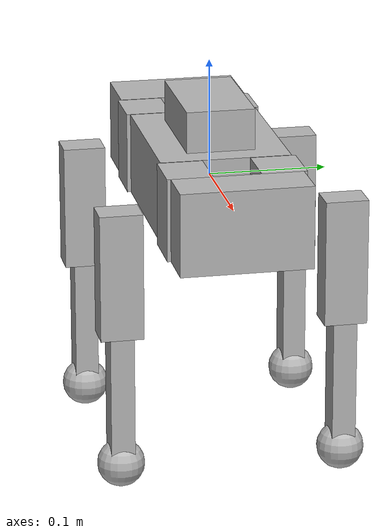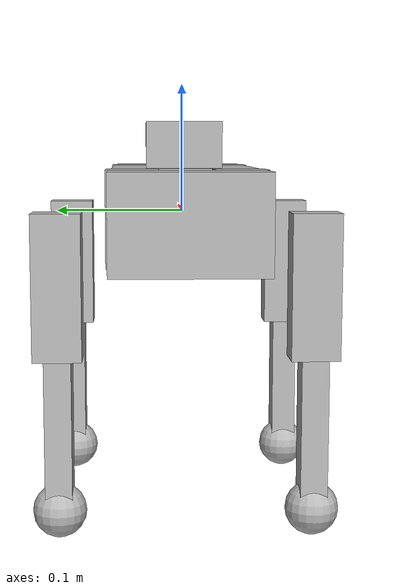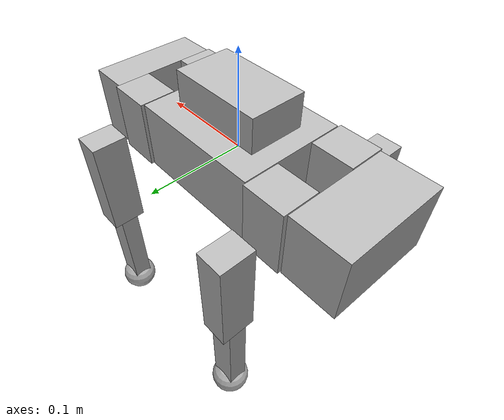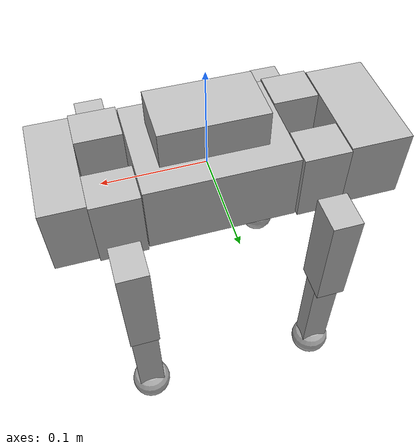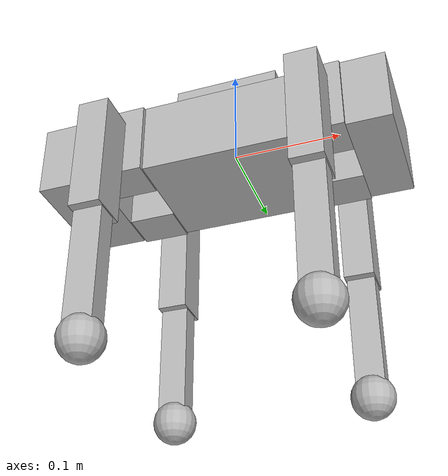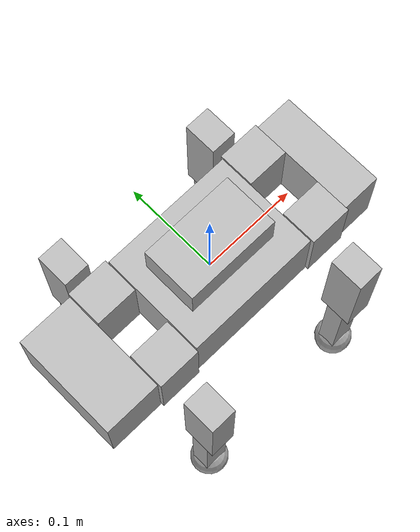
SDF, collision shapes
<sdf version='1.7'>
  <model name='spot_micro'>
    <link name='base_link'>
      <inertial>
        <pose>0 0 0.00473 0 -0 0</pose>
        <mass>3.7</mass>
        <inertia>
          <ixx>400.001</ixx>
          <ixy>0</ixy>
          <ixz>0</ixz>
          <iyy>400.001</iyy>
          <iyz>0</iyz>
          <izz>400</izz>
        </inertia>
      </inertial>
      <collision name='base_link_collision'>
        <pose>0 0 0 0 -0 0</pose>
        <geometry>
          <box>
            <size>0.14 0.11 0.07</size>
          </box>
        </geometry>
      </collision>
      <collision name='base_link_fixed_joint_lump__front_link_collision_1'>
        <pose>-0.145 0 0 0 -0 0</pose>
        <geometry>
          <box>
            <size>0.058 0.11 0.07</size>
          </box>
        </geometry>
      </collision>
      <collision name='base_link_fixed_joint_lump__lidar_link_collision_2'>
        <pose>0 0 0.035 0 -0 0</pose>
        <geometry>
          <box>
            <size>0.0985 0.0577 0.07</size>
          </box>
        </geometry>
      </collision>
      <collision name='base_link_fixed_joint_lump__rear_link_collision_3'>
        <pose>0.135 0 0 0 -0 0</pose>
        <geometry>
          <box>
            <size>0.04 0.11 0.07</size>
          </box>
        </geometry>
      </collision>
      <visual name='base_link_visual'>
        <pose>-0.042 -0.055 -0.01 0 -0 0</pose>
        <geometry>
          <mesh>
            <scale>0.001 0.001 0.001</scale>
            <uri>model://spot_micro/meshes/mainbody.stl</uri>
          </mesh>
        </geometry>
      </visual>
      <visual name='base_link_fixed_joint_lump__front_link_visual_1'>
        <pose>0.04 0.055 -0.01 0 -0 3.14159</pose>
        <geometry>
          <mesh>
            <scale>0.001 0.001 0.001</scale>
            <uri>model://spot_micro/meshes/frontpart.stl</uri>
          </mesh>
        </geometry>
      </visual>
      <visual name='base_link_fixed_joint_lump__lidar_link_visual_2'>
        <pose>-0.03425 0.03585 0.035 1.57075 -0 0</pose>
        <geometry>
          <mesh>
            <scale>0.001 0.001 0.001</scale>
            <uri>model://spot_micro/meshes/rplidar_main.STL</uri>
          </mesh>
        </geometry>
      </visual>
      <visual name='base_link_fixed_joint_lump__rear_link_visual_3'>
        <pose>0.04 0.055 -0.01 0 -0 3.14159</pose>
        <geometry>
          <mesh>
            <scale>0.001 0.001 0.001</scale>
            <uri>model://spot_micro/meshes/backpart.stl</uri>
          </mesh>
        </geometry>
      </visual>
    </link>
    <joint name='front_left_shoulder' type='revolute'>
      <pose relative_to='base_link'>0.093 0.039 0 0 -0 0</pose>
      <parent>base_link</parent>
      <child>front_left_shoulder_link</child>
      <axis>
        <xyz>1 0 0</xyz>
        <limit>
          <lower>-0.548</lower>
          <upper>0.548</upper>
          <effort>1000</effort>
          <velocity>0.7</velocity>
        </limit>
        <dynamics>
          <damping>0</damping>
          <friction>0.5</friction>
          <spring_reference>0</spring_reference>
          <spring_stiffness>0</spring_stiffness>
        </dynamics>
      </axis>
    </joint>
    <link name='front_left_shoulder_link'>
      <pose relative_to='front_left_shoulder'>0 0 0 0 -0 0</pose>
      <inertial>
        <pose>0 0 0 0 -0 0</pose>
        <mass>0.1</mass>
        <inertia>
          <ixx>100</ixx>
          <ixy>0</ixy>
          <ixz>0</ixz>
          <iyy>100</iyy>
          <iyz>0</iyz>
          <izz>100</izz>
        </inertia>
      </inertial>
      <collision name='front_left_shoulder_link_collision'>
        <pose>0 0 0 0 -0 0</pose>
        <geometry>
          <box>
            <size>0.044 0.038 0.07</size>
          </box>
        </geometry>
      </collision>
      <visual name='front_left_shoulder_link_visual'>
        <pose>0.135 0.015 -0.01 0 -0 3.14159</pose>
        <geometry>
          <mesh>
            <scale>0.001 0.001 0.001</scale>
            <uri>model://spot_micro/meshes/lshoulder.stl</uri>
          </mesh>
        </geometry>
      </visual>
    </link>
    <joint name='front_left_leg' type='revolute'>
      <pose relative_to='front_left_shoulder_link'>0 0.055 0 0 -0 0</pose>
      <parent>front_left_shoulder_link</parent>
      <child>front_left_leg_link</child>
      <axis>
        <xyz>0 1 0</xyz>
        <limit>
          <lower>-2.666</lower>
          <upper>1.548</upper>
          <effort>1000</effort>
          <velocity>0.5</velocity>
        </limit>
        <dynamics>
          <damping>0</damping>
          <friction>0</friction>
          <spring_reference>0</spring_reference>
          <spring_stiffness>0</spring_stiffness>
        </dynamics>
      </axis>
    </joint>
    <link name='front_left_leg_link'>
      <pose relative_to='front_left_leg'>0 0 0 0 -0 0</pose>
      <inertial>
        <pose>0 0 0 0 -0 0</pose>
        <mass>0.15</mass>
        <inertia>
          <ixx>1000</ixx>
          <ixy>0</ixy>
          <ixz>0</ixz>
          <iyy>1000</iyy>
          <iyz>0</iyz>
          <izz>1000</izz>
        </inertia>
      </inertial>
      <collision name='front_left_leg_link_collision'>
        <pose>0 0 -0.05 0 -0 0</pose>
        <geometry>
          <box>
            <size>0.028 0.036 0.1075</size>
          </box>
        </geometry>
      </collision>
      <visual name='front_left_leg_link_visual'>
        <pose>0.13 -0.04 -0.025 0 -0.139 3.14159</pose>
        <geometry>
          <mesh>
            <scale>0.001 0.001 0.001</scale>
            <uri>model://spot_micro/meshes/larm.stl</uri>
          </mesh>
        </geometry>
      </visual>
      <visual name='front_left_leg_link_cover_visual_1'>
        <pose>0.13 -0.04 -0.025 0 -0.139 3.14159</pose>
        <geometry>
          <mesh>
            <scale>0.001 0.001 0.001</scale>
            <uri>model://spot_micro/meshes/larm_cover.stl</uri>
          </mesh>
        </geometry>
      </visual>
    </link>
    <joint name='front_left_foot' type='revolute'>
      <pose relative_to='front_left_leg_link'>0 0 -0.1075 0 -0 0</pose>
      <parent>front_left_leg_link</parent>
      <child>front_left_foot_link</child>
      <axis>
        <xyz>0 1 0</xyz>
        <limit>
          <lower>-2.6</lower>
          <upper>0.1</upper>
          <effort>1000</effort>
          <velocity>0.5</velocity>
        </limit>
        <dynamics>
          <damping>0</damping>
          <friction>0.5</friction>
          <spring_reference>0</spring_reference>
          <spring_stiffness>0</spring_stiffness>
        </dynamics>
      </axis>
    </joint>
    <link name='front_left_foot_link'>
      <pose relative_to='front_left_foot'>0 0 0 0 -0 0</pose>
      <inertial>
        <pose>0 0 -0.043333 0 -0 0</pose>
        <mass>0.15</mass>
        <inertia>
          <ixx>2000</ixx>
          <ixy>0</ixy>
          <ixz>0</ixz>
          <iyy>2000</iyy>
          <iyz>0</iyz>
          <izz>2000</izz>
        </inertia>
      </inertial>
      <collision name='front_left_foot_link_collision'>
        <pose>0 0 -0.05 0 -0 0</pose>
        <geometry>
          <box>
            <size>0.026 0.02 0.13</size>
          </box>
        </geometry>
      </collision>
      <collision name='front_left_foot_link_fixed_joint_lump__front_left_toe_link_collision_1'>
        <pose>0 0 -0.11 0 -0 0</pose>
        <geometry>
          <sphere>
            <radius>0.02</radius>
          </sphere>
        </geometry>
      </collision>
      <visual name='front_left_foot_link_visual'>
        <pose>0.12 -0.04 0.1 0 -0 3.14159</pose>
        <geometry>
          <mesh>
            <scale>0.001 0.001 0.001</scale>
            <uri>model://spot_micro/meshes/lfoot.stl</uri>
          </mesh>
        </geometry>
      </visual>
      <visual name='front_left_foot_link_fixed_joint_lump__front_left_toe_link_visual_1'>
        <pose>0 0.01 -0.115 0 -0.4001 3.14159</pose>
        <geometry>
          <mesh>
            <scale>0.001 0.001 0.001</scale>
            <uri>model://spot_micro/meshes/foot.stl</uri>
          </mesh>
        </geometry>
      </visual>
    </link>
    <joint name='front_right_shoulder' type='revolute'>
      <pose relative_to='base_link'>0.093 -0.039 0 0 -0 0</pose>
      <parent>base_link</parent>
      <child>front_right_shoulder_link</child>
      <axis>
        <xyz>1 0 0</xyz>
        <limit>
          <lower>-0.548</lower>
          <upper>0.548</upper>
          <effort>1000</effort>
          <velocity>0.7</velocity>
        </limit>
        <dynamics>
          <damping>0</damping>
          <friction>0.5</friction>
          <spring_reference>0</spring_reference>
          <spring_stiffness>0</spring_stiffness>
        </dynamics>
      </axis>
    </joint>
    <link name='front_right_shoulder_link'>
      <pose relative_to='front_right_shoulder'>0 0 0 0 -0 0</pose>
      <inertial>
        <pose>0 0 0 0 -0 0</pose>
        <mass>0.1</mass>
        <inertia>
          <ixx>100</ixx>
          <ixy>0</ixy>
          <ixz>0</ixz>
          <iyy>100</iyy>
          <iyz>0</iyz>
          <izz>100</izz>
        </inertia>
      </inertial>
      <collision name='front_right_shoulder_link_collision'>
        <pose>0 0 0 0 -0 0</pose>
        <geometry>
          <box>
            <size>0.044 0.038 0.07</size>
          </box>
        </geometry>
      </collision>
      <visual name='front_right_shoulder_link_visual'>
        <pose>0.135 0.095 -0.01 0 -0 3.14159</pose>
        <geometry>
          <mesh>
            <scale>0.001 0.001 0.001</scale>
            <uri>model://spot_micro/meshes/rshoulder.stl</uri>
          </mesh>
        </geometry>
      </visual>
    </link>
    <joint name='front_right_leg' type='revolute'>
      <pose relative_to='front_right_shoulder_link'>0 -0.055 0 0 -0 0</pose>
      <parent>front_right_shoulder_link</parent>
      <child>front_right_leg_link</child>
      <axis>
        <xyz>0 1 0</xyz>
        <limit>
          <lower>-2.666</lower>
          <upper>1.548</upper>
          <effort>1000</effort>
          <velocity>0.5</velocity>
        </limit>
        <dynamics>
          <damping>0</damping>
          <friction>0</friction>
          <spring_reference>0</spring_reference>
          <spring_stiffness>0</spring_stiffness>
        </dynamics>
      </axis>
    </joint>
    <link name='front_right_leg_link'>
      <pose relative_to='front_right_leg'>0 0 0 0 -0 0</pose>
      <inertial>
        <pose>0 0 0 0 -0 0</pose>
        <mass>0.15</mass>
        <inertia>
          <ixx>1000</ixx>
          <ixy>0</ixy>
          <ixz>0</ixz>
          <iyy>1000</iyy>
          <iyz>0</iyz>
          <izz>1000</izz>
        </inertia>
      </inertial>
      <collision name='front_right_leg_link_collision'>
        <pose>0 0 -0.05 0 -0 0</pose>
        <geometry>
          <box>
            <size>0.028 0.036 0.1075</size>
          </box>
        </geometry>
      </collision>
      <visual name='front_right_leg_link_visual'>
        <pose>0.13 0.15 -0.025 0 -0.139 3.14159</pose>
        <geometry>
          <mesh>
            <scale>0.001 0.001 0.001</scale>
            <uri>model://spot_micro/meshes/rarm.stl</uri>
          </mesh>
        </geometry>
      </visual>
      <visual name='front_right_leg_link_cover_visual_1'>
        <pose>0.13 0.15 -0.025 0 -0.139 3.14159</pose>
        <geometry>
          <mesh>
            <scale>0.001 0.001 0.001</scale>
            <uri>model://spot_micro/meshes/rarm_cover.stl</uri>
          </mesh>
        </geometry>
      </visual>
    </link>
    <joint name='front_right_foot' type='revolute'>
      <pose relative_to='front_right_leg_link'>0 0 -0.1075 0 -0 0</pose>
      <parent>front_right_leg_link</parent>
      <child>front_right_foot_link</child>
      <axis>
        <xyz>0 1 0</xyz>
        <limit>
          <lower>-2.6</lower>
          <upper>0.1</upper>
          <effort>1000</effort>
          <velocity>0.5</velocity>
        </limit>
        <dynamics>
          <damping>0</damping>
          <friction>0.5</friction>
          <spring_reference>0</spring_reference>
          <spring_stiffness>0</spring_stiffness>
        </dynamics>
      </axis>
    </joint>
    <link name='front_right_foot_link'>
      <pose relative_to='front_right_foot'>0 0 0 0 -0 0</pose>
      <inertial>
        <pose>0 0 -0.043333 0 -0 0</pose>
        <mass>0.15</mass>
        <inertia>
          <ixx>2000</ixx>
          <ixy>0</ixy>
          <ixz>0</ixz>
          <iyy>2000</iyy>
          <iyz>0</iyz>
          <izz>2000</izz>
        </inertia>
      </inertial>
      <collision name='front_right_foot_link_collision'>
        <pose>0 0 -0.05 0 -0 0</pose>
        <geometry>
          <box>
            <size>0.026 0.02 0.13</size>
          </box>
        </geometry>
      </collision>
      <collision name='front_right_foot_link_fixed_joint_lump__front_right_toe_link_collision_1'>
        <pose>0 0 -0.11 0 -0 0</pose>
        <geometry>
          <sphere>
            <radius>0.02</radius>
          </sphere>
        </geometry>
      </collision>
      <visual name='front_right_foot_link_visual'>
        <pose>0.12 0.15 0.1 0 -0 3.14159</pose>
        <geometry>
          <mesh>
            <scale>0.001 0.001 0.001</scale>
            <uri>model://spot_micro/meshes/rfoot.stl</uri>
          </mesh>
        </geometry>
      </visual>
      <visual name='front_right_foot_link_fixed_joint_lump__front_right_toe_link_visual_1'>
        <pose>0 0.01 -0.115 0 -0.4001 3.14159</pose>
        <geometry>
          <mesh>
            <scale>0.001 0.001 0.001</scale>
            <uri>model://spot_micro/meshes/foot.stl</uri>
          </mesh>
        </geometry>
      </visual>
    </link>
    <joint name='rear_left_shoulder' type='revolute'>
      <pose relative_to='base_link'>-0.093 0.039 0 0 -0 0</pose>
      <parent>base_link</parent>
      <child>rear_left_shoulder_link</child>
      <axis>
        <xyz>1 0 0</xyz>
        <limit>
          <lower>-0.548</lower>
          <upper>0.548</upper>
          <effort>1000</effort>
          <velocity>0.7</velocity>
        </limit>
        <dynamics>
          <damping>0</damping>
          <friction>0.5</friction>
          <spring_reference>0</spring_reference>
          <spring_stiffness>0</spring_stiffness>
        </dynamics>
      </axis>
    </joint>
    <link name='rear_left_shoulder_link'>
      <pose relative_to='rear_left_shoulder'>0 0 0 0 -0 0</pose>
      <inertial>
        <pose>0 0 0 0 -0 0</pose>
        <mass>0.1</mass>
        <inertia>
          <ixx>100</ixx>
          <ixy>0</ixy>
          <ixz>0</ixz>
          <iyy>100</iyy>
          <iyz>0</iyz>
          <izz>100</izz>
        </inertia>
      </inertial>
      <collision name='rear_left_shoulder_link_collision'>
        <pose>0 0 0 0 -0 0</pose>
        <geometry>
          <box>
            <size>0.044 0.038 0.07</size>
          </box>
        </geometry>
      </collision>
      <visual name='rear_left_shoulder_link_visual'>
        <pose>0.135 0.015 -0.01 0 -0 3.14159</pose>
        <geometry>
          <mesh>
            <scale>0.001 0.001 0.001</scale>
            <uri>model://spot_micro/meshes/lshoulder.stl</uri>
          </mesh>
        </geometry>
      </visual>
    </link>
    <joint name='rear_left_leg' type='revolute'>
      <pose relative_to='rear_left_shoulder_link'>0 0.055 0 0 -0 0</pose>
      <parent>rear_left_shoulder_link</parent>
      <child>rear_left_leg_link</child>
      <axis>
        <xyz>0 1 0</xyz>
        <limit>
          <lower>-2.666</lower>
          <upper>1.548</upper>
          <effort>1000</effort>
          <velocity>0.5</velocity>
        </limit>
        <dynamics>
          <damping>0</damping>
          <friction>0</friction>
          <spring_reference>0</spring_reference>
          <spring_stiffness>0</spring_stiffness>
        </dynamics>
      </axis>
    </joint>
    <link name='rear_left_leg_link'>
      <pose relative_to='rear_left_leg'>0 0 0 0 -0 0</pose>
      <inertial>
        <pose>0 0 0 0 -0 0</pose>
        <mass>0.15</mass>
        <inertia>
          <ixx>1000</ixx>
          <ixy>0</ixy>
          <ixz>0</ixz>
          <iyy>1000</iyy>
          <iyz>0</iyz>
          <izz>1000</izz>
        </inertia>
      </inertial>
      <collision name='rear_left_leg_link_collision'>
        <pose>0 0 -0.05 0 -0 0</pose>
        <geometry>
          <box>
            <size>0.028 0.036 0.1075</size>
          </box>
        </geometry>
      </collision>
      <visual name='rear_left_leg_link_visual'>
        <pose>0.13 -0.04 -0.025 0 -0.139 3.14159</pose>
        <geometry>
          <mesh>
            <scale>0.001 0.001 0.001</scale>
            <uri>model://spot_micro/meshes/larm.stl</uri>
          </mesh>
        </geometry>
      </visual>
      <visual name='rear_left_leg_link_cover_visual_1'>
        <pose>0.13 -0.04 -0.025 0 -0.139 3.14159</pose>
        <geometry>
          <mesh>
            <scale>0.001 0.001 0.001</scale>
            <uri>model://spot_micro/meshes/larm_cover.stl</uri>
          </mesh>
        </geometry>
      </visual>
    </link>
    <joint name='rear_left_foot' type='revolute'>
      <pose relative_to='rear_left_leg_link'>0 0 -0.1075 0 -0 0</pose>
      <parent>rear_left_leg_link</parent>
      <child>rear_left_foot_link</child>
      <axis>
        <xyz>0 1 0</xyz>
        <limit>
          <lower>-2.6</lower>
          <upper>0.1</upper>
          <effort>1000</effort>
          <velocity>0.5</velocity>
        </limit>
        <dynamics>
          <damping>0</damping>
          <friction>0.5</friction>
          <spring_reference>0</spring_reference>
          <spring_stiffness>0</spring_stiffness>
        </dynamics>
      </axis>
    </joint>
    <link name='rear_left_foot_link'>
      <pose relative_to='rear_left_foot'>0 0 0 0 -0 0</pose>
      <inertial>
        <pose>0 0 -0.043333 0 -0 0</pose>
        <mass>0.15</mass>
        <inertia>
          <ixx>2000</ixx>
          <ixy>0</ixy>
          <ixz>0</ixz>
          <iyy>2000</iyy>
          <iyz>0</iyz>
          <izz>2000</izz>
        </inertia>
      </inertial>
      <collision name='rear_left_foot_link_collision'>
        <pose>0 0 -0.05 0 -0 0</pose>
        <geometry>
          <box>
            <size>0.026 0.02 0.13</size>
          </box>
        </geometry>
      </collision>
      <collision name='rear_left_foot_link_fixed_joint_lump__rear_left_toe_link_collision_1'>
        <pose>0 0 -0.11 0 -0 0</pose>
        <geometry>
          <sphere>
            <radius>0.02</radius>
          </sphere>
        </geometry>
      </collision>
      <visual name='rear_left_foot_link_visual'>
        <pose>0.12 -0.04 0.1 0 -0 3.14159</pose>
        <geometry>
          <mesh>
            <scale>0.001 0.001 0.001</scale>
            <uri>model://spot_micro/meshes/lfoot.stl</uri>
          </mesh>
        </geometry>
      </visual>
      <visual name='rear_left_foot_link_fixed_joint_lump__rear_left_toe_link_visual_1'>
        <pose>0 0.01 -0.115 0 -0.4001 3.14159</pose>
        <geometry>
          <mesh>
            <scale>0.001 0.001 0.001</scale>
            <uri>model://spot_micro/meshes/foot.stl</uri>
          </mesh>
        </geometry>
      </visual>
    </link>
    <joint name='rear_right_shoulder' type='revolute'>
      <pose relative_to='base_link'>-0.093 -0.039 0 0 -0 0</pose>
      <parent>base_link</parent>
      <child>rear_right_shoulder_link</child>
      <axis>
        <xyz>1 0 0</xyz>
        <limit>
          <lower>-0.548</lower>
          <upper>0.548</upper>
          <effort>1000</effort>
          <velocity>0.7</velocity>
        </limit>
        <dynamics>
          <damping>0</damping>
          <friction>0.5</friction>
          <spring_reference>0</spring_reference>
          <spring_stiffness>0</spring_stiffness>
        </dynamics>
      </axis>
    </joint>
    <link name='rear_right_shoulder_link'>
      <pose relative_to='rear_right_shoulder'>0 0 0 0 -0 0</pose>
      <inertial>
        <pose>0 0 0 0 -0 0</pose>
        <mass>0.1</mass>
        <inertia>
          <ixx>100</ixx>
          <ixy>0</ixy>
          <ixz>0</ixz>
          <iyy>100</iyy>
          <iyz>0</iyz>
          <izz>100</izz>
        </inertia>
      </inertial>
      <collision name='rear_right_shoulder_link_collision'>
        <pose>0 0 0 0 -0 0</pose>
        <geometry>
          <box>
            <size>0.044 0.038 0.07</size>
          </box>
        </geometry>
      </collision>
      <visual name='rear_right_shoulder_link_visual'>
        <pose>0.135 0.095 -0.01 0 -0 3.14159</pose>
        <geometry>
          <mesh>
            <scale>0.001 0.001 0.001</scale>
            <uri>model://spot_micro/meshes/rshoulder.stl</uri>
          </mesh>
        </geometry>
      </visual>
    </link>
    <joint name='rear_right_leg' type='revolute'>
      <pose relative_to='rear_right_shoulder_link'>0 -0.055 0 0 -0 0</pose>
      <parent>rear_right_shoulder_link</parent>
      <child>rear_right_leg_link</child>
      <axis>
        <xyz>0 1 0</xyz>
        <limit>
          <lower>-2.666</lower>
          <upper>1.548</upper>
          <effort>1000</effort>
          <velocity>0.5</velocity>
        </limit>
        <dynamics>
          <damping>0</damping>
          <friction>0</friction>
          <spring_reference>0</spring_reference>
          <spring_stiffness>0</spring_stiffness>
        </dynamics>
      </axis>
    </joint>
    <link name='rear_right_leg_link'>
      <pose relative_to='rear_right_leg'>0 0 0 0 -0 0</pose>
      <inertial>
        <pose>0 0 0 0 -0 0</pose>
        <mass>0.15</mass>
        <inertia>
          <ixx>1000</ixx>
          <ixy>0</ixy>
          <ixz>0</ixz>
          <iyy>1000</iyy>
          <iyz>0</iyz>
          <izz>1000</izz>
        </inertia>
      </inertial>
      <collision name='rear_right_leg_link_collision'>
        <pose>0 0 -0.05 0 -0 0</pose>
        <geometry>
          <box>
            <size>0.028 0.036 0.1075</size>
          </box>
        </geometry>
      </collision>
      <visual name='rear_right_leg_link_visual'>
        <pose>0.13 0.15 -0.025 0 -0.139 3.14159</pose>
        <geometry>
          <mesh>
            <scale>0.001 0.001 0.001</scale>
            <uri>model://spot_micro/meshes/rarm.stl</uri>
          </mesh>
        </geometry>
      </visual>
      <visual name='rear_right_leg_link_cover_visual_1'>
        <pose>0.13 0.15 -0.025 0 -0.139 3.14159</pose>
        <geometry>
          <mesh>
            <scale>0.001 0.001 0.001</scale>
            <uri>model://spot_micro/meshes/rarm_cover.stl</uri>
          </mesh>
        </geometry>
      </visual>
    </link>
    <joint name='rear_right_foot' type='revolute'>
      <pose relative_to='rear_right_leg_link'>0 0 -0.1075 0 -0 0</pose>
      <parent>rear_right_leg_link</parent>
      <child>rear_right_foot_link</child>
      <axis>
        <xyz>0 1 0</xyz>
        <limit>
          <lower>-2.6</lower>
          <upper>0.1</upper>
          <effort>1000</effort>
          <velocity>0.5</velocity>
        </limit>
        <dynamics>
          <damping>0</damping>
          <friction>0.5</friction>
          <spring_reference>0</spring_reference>
          <spring_stiffness>0</spring_stiffness>
        </dynamics>
      </axis>
    </joint>
    <link name='rear_right_foot_link'>
      <pose relative_to='rear_right_foot'>0 0 0 0 -0 0</pose>
      <inertial>
        <pose>0 0 -0.043333 0 -0 0</pose>
        <mass>0.15</mass>
        <inertia>
          <ixx>2000</ixx>
          <ixy>0</ixy>
          <ixz>0</ixz>
          <iyy>2000</iyy>
          <iyz>0</iyz>
          <izz>2000</izz>
        </inertia>
      </inertial>
      <collision name='rear_right_foot_link_collision'>
        <pose>0 0 -0.05 0 -0 0</pose>
        <geometry>
          <box>
            <size>0.026 0.02 0.13</size>
          </box>
        </geometry>
      </collision>
      <collision name='rear_right_foot_link_fixed_joint_lump__rear_right_toe_link_collision_1'>
        <pose>0 0 -0.11 0 -0 0</pose>
        <geometry>
          <sphere>
            <radius>0.02</radius>
          </sphere>
        </geometry>
      </collision>
      <visual name='rear_right_foot_link_visual'>
        <pose>0.12 0.15 0.1 0 -0 3.14159</pose>
        <geometry>
          <mesh>
            <scale>0.001 0.001 0.001</scale>
            <uri>model://spot_micro/meshes/rfoot.stl</uri>
          </mesh>
        </geometry>
      </visual>
      <visual name='rear_right_foot_link_fixed_joint_lump__rear_right_toe_link_visual_1'>
        <pose>0 0.01 -0.115 0 -0.4001 3.14159</pose>
        <geometry>
          <mesh>
            <scale>0.001 0.001 0.001</scale>
            <uri>model://spot_micro/meshes/foot.stl</uri>
          </mesh>
        </geometry>
      </visual>
    </link>
    <plugin name='gazebo_ros_joint_state_publisher' filename='libgazebo_ros_joint_state_publisher.so'>
      <ros>
        <namespace>smov</namespace>
      </ros>
      <update_rate>100</update_rate>
      <joint_name>front_left_shoulder</joint_name>
      <joint_name>front_left_leg</joint_name>
      <joint_name>front_left_foot</joint_name>
      <joint_name>front_right_shoulder</joint_name>
      <joint_name>front_right_leg</joint_name>
      <joint_name>front_right_foot</joint_name>
      <joint_name>rear_left_shoulder</joint_name>
      <joint_name>rear_left_leg</joint_name>
      <joint_name>rear_left_foot</joint_name>
      <joint_name>rear_right_shoulder</joint_name>
      <joint_name>rear_right_leg</joint_name>
      <joint_name>rear_right_foot</joint_name>
    </plugin>
    <static>0</static>
  </model>
</sdf>
